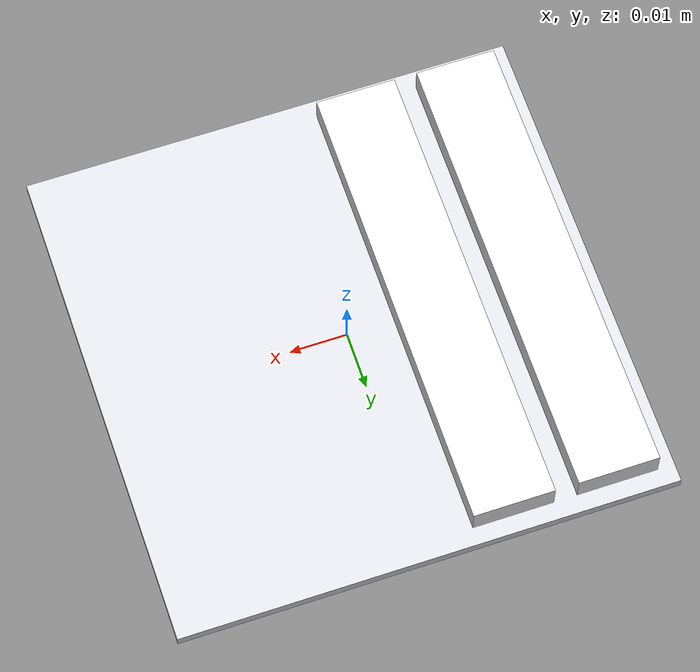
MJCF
<mujoco model="Switch_Quantity2_08">
  <asset>
    <material name="Switch_Quantity2_08_bezel" rgba="0.85 0.85 0.88 1" specular="0.85" shininess="0.9"/>
    <material name="Switch_Quantity2_08_btn1" rgba="0.95 0.95 0.97 1" specular="0.85" shininess="0.9"/>
    <material name="Switch_Quantity2_08_btn2" rgba="0.95 0.95 0.97 1" specular="0.85" shininess="0.9"/>
  </asset>
  <worldbody>
    <body name="Switch_Quantity2_08">
      <geom name="Switch_Quantity2_08_bezel" type="box"
            pos="0 0 0.001" size="0.043 0.043 0.001"
            material="Switch_Quantity2_08_bezel"/>
      <geom name="Switch_Quantity2_08_btn1" type="box"
            pos="-0.033 0 0.0035" size="0.007 0.04 0.0035"
            material="Switch_Quantity2_08_btn1"/>
      <geom name="Switch_Quantity2_08_btn2" type="box"
            pos="-0.015 0 0.0035" size="0.007 0.04 0.0035"
            material="Switch_Quantity2_08_btn2"/>
    </body>
  </worldbody>
</mujoco>
